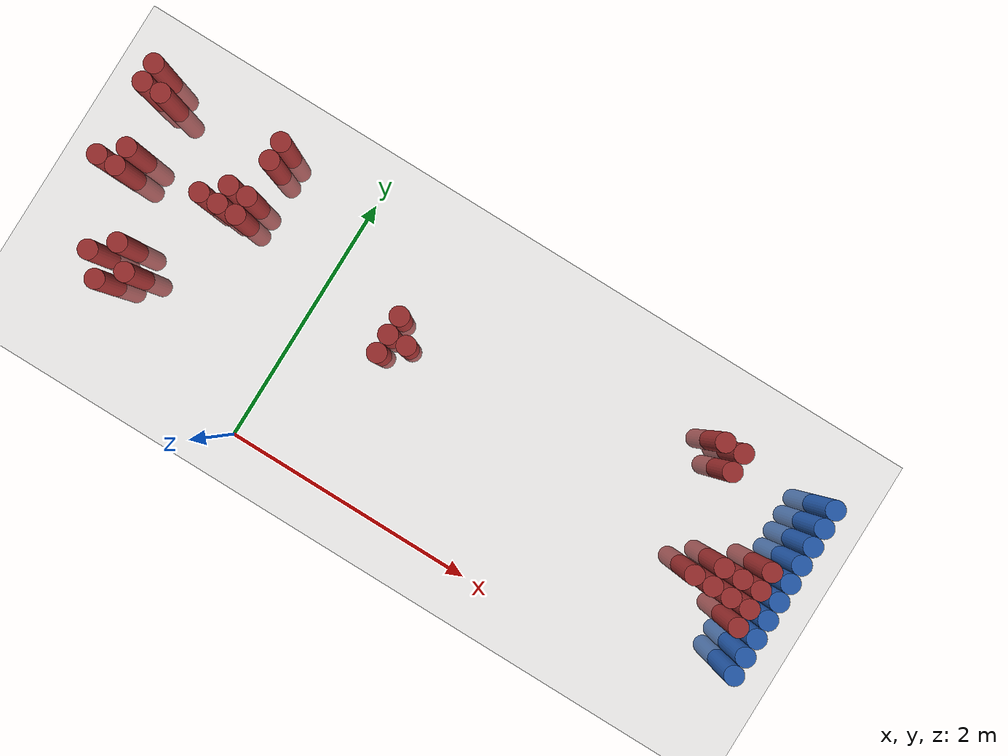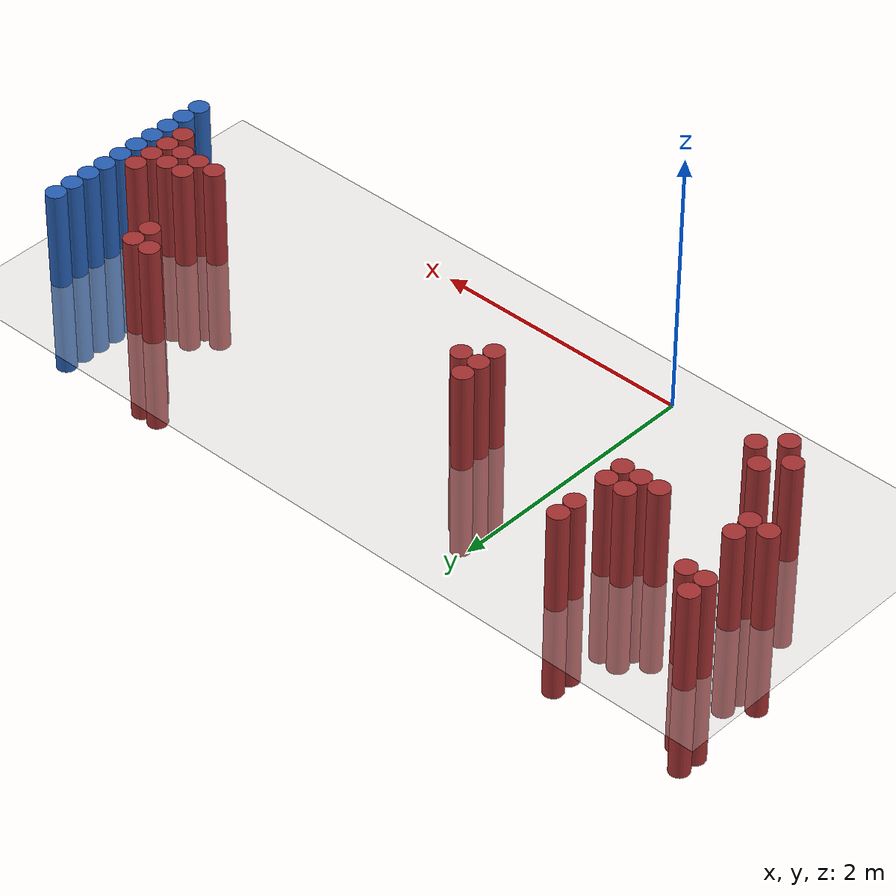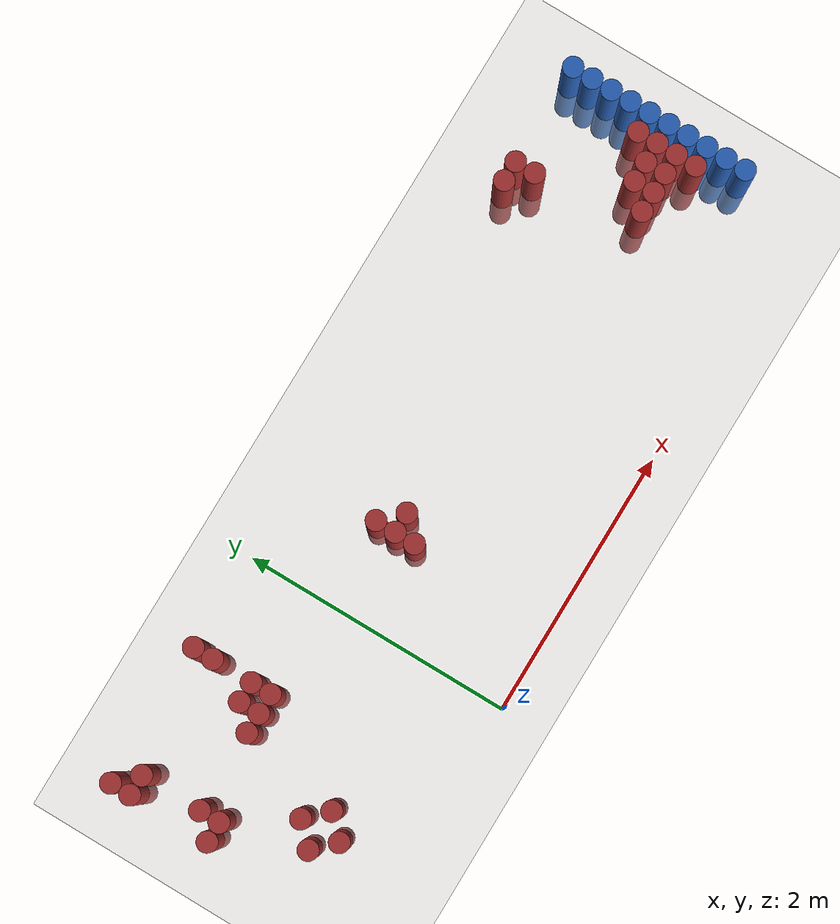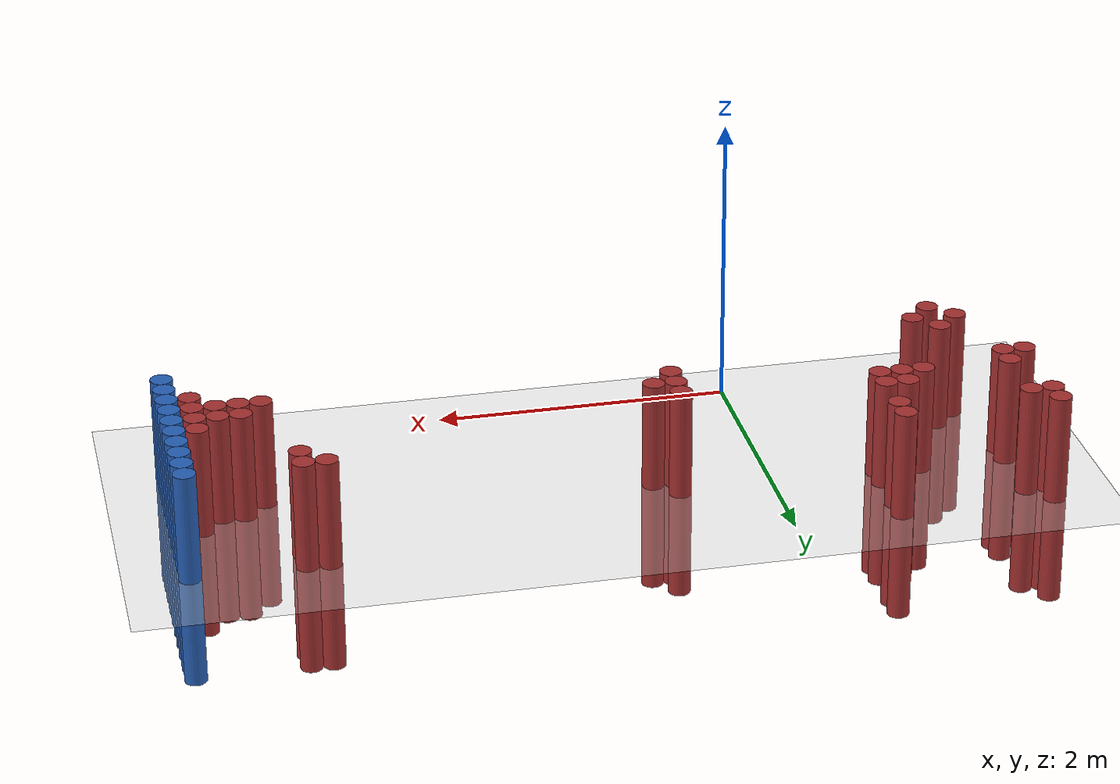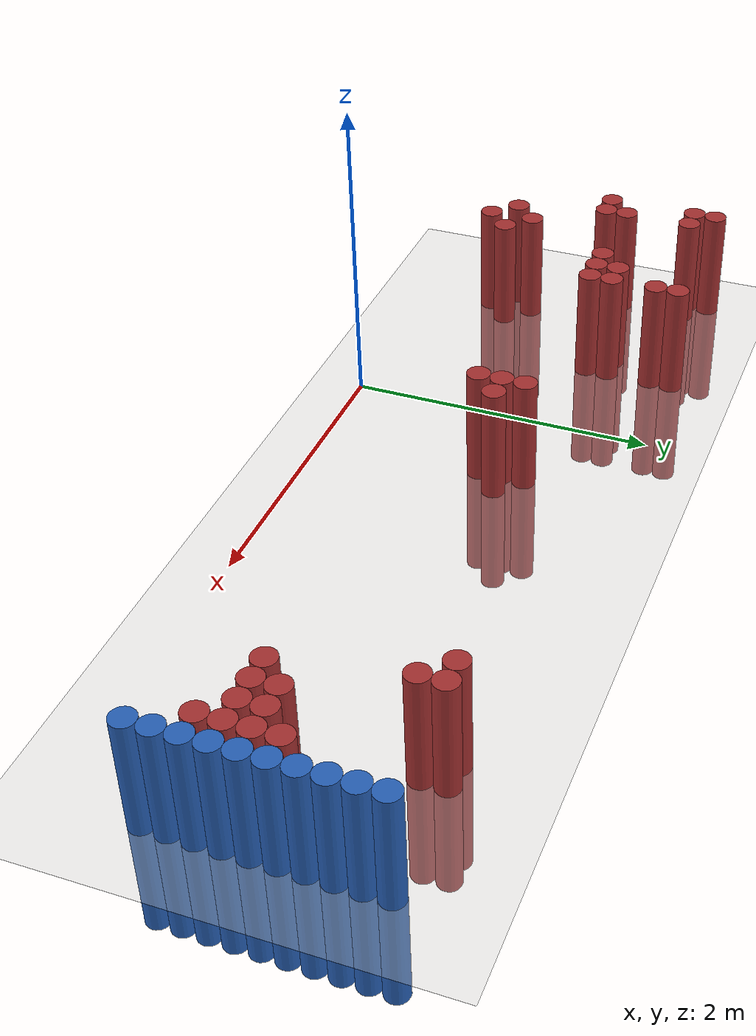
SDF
<sdf version="1.6">
 <world name="default">
  <model name="ground_plane">
   <static>1</static>
   <link name="link">
    <collision name="collision">
     <geometry><plane><normal>0 0 1</normal><size>100 100</size></plane></geometry>
     <surface><friction><ode><mu>100</mu><mu2>50</mu2></ode></friction></surface>
    </collision>
    <visual name="visual">
     <cast_shadows>0</cast_shadows>
     <geometry><plane><normal>0 0 1</normal><size>100 100</size></plane></geometry>
     <material>
      <script><uri>file://media/materials/scripts/gazebo.material</uri><name>Gazebo/Grey</name></script>
     </material>
    </visual>
   </link>
  </model>
  <model name="unit_cylinder_120">
   <static>1</static>
   <pose>3.925000 0.475000 0.000000 0.000000 0.000000 0.000000</pose>
   <link name="link">
    <inertial>
     <mass>1</mass>
     <inertia><ixx>0.145833</ixx><ixy>0</ixy><ixz>0</ixz><iyy>0.145833</iyy><iyz>0</iyz><izz>0.125</izz></inertia>
    </inertial>
    <collision name="collision">
     <geometry><cylinder><radius>0.075000</radius><length>1.5</length></cylinder></geometry>
    </collision>
    <visual name="visual">
     <geometry><cylinder><radius>0.075000</radius><length>1.5</length></cylinder></geometry>
     <material>
      <ambient>0.152000 0.379000 0.720000 1</ambient>
      <diffuse>0.152000 0.379000 0.720000 1</diffuse>
     </material>
     <material>
      <script><name>Gazebo/Grey</name><uri>file://media/materials/scripts/gazebo.material</uri></script>
     </material>
    </visual>
   </link>
  </model>
  <model name="unit_cylinder_122">
   <static>1</static>
   <pose>3.925000 0.625000 0.000000 0.000000 0.000000 0.000000</pose>
   <link name="link">
    <inertial>
     <mass>1</mass>
     <inertia><ixx>0.145833</ixx><ixy>0</ixy><ixz>0</ixz><iyy>0.145833</iyy><iyz>0</iyz><izz>0.125</izz></inertia>
    </inertial>
    <collision name="collision">
     <geometry><cylinder><radius>0.075000</radius><length>1.5</length></cylinder></geometry>
    </collision>
    <visual name="visual">
     <geometry><cylinder><radius>0.075000</radius><length>1.5</length></cylinder></geometry>
     <material>
      <ambient>0.152000 0.379000 0.720000 1</ambient>
      <diffuse>0.152000 0.379000 0.720000 1</diffuse>
     </material>
     <material>
      <script><name>Gazebo/Grey</name><uri>file://media/materials/scripts/gazebo.material</uri></script>
     </material>
    </visual>
   </link>
  </model>
  <model name="unit_cylinder_124">
   <static>1</static>
   <pose>3.925000 0.775000 0.000000 0.000000 0.000000 0.000000</pose>
   <link name="link">
    <inertial>
     <mass>1</mass>
     <inertia><ixx>0.145833</ixx><ixy>0</ixy><ixz>0</ixz><iyy>0.145833</iyy><iyz>0</iyz><izz>0.125</izz></inertia>
    </inertial>
    <collision name="collision">
     <geometry><cylinder><radius>0.075000</radius><length>1.5</length></cylinder></geometry>
    </collision>
    <visual name="visual">
     <geometry><cylinder><radius>0.075000</radius><length>1.5</length></cylinder></geometry>
     <material>
      <ambient>0.152000 0.379000 0.720000 1</ambient>
      <diffuse>0.152000 0.379000 0.720000 1</diffuse>
     </material>
     <material>
      <script><name>Gazebo/Grey</name><uri>file://media/materials/scripts/gazebo.material</uri></script>
     </material>
    </visual>
   </link>
  </model>
  <model name="unit_cylinder_126">
   <static>1</static>
   <pose>3.925000 0.925000 0.000000 0.000000 0.000000 0.000000</pose>
   <link name="link">
    <inertial>
     <mass>1</mass>
     <inertia><ixx>0.145833</ixx><ixy>0</ixy><ixz>0</ixz><iyy>0.145833</iyy><iyz>0</iyz><izz>0.125</izz></inertia>
    </inertial>
    <collision name="collision">
     <geometry><cylinder><radius>0.075000</radius><length>1.5</length></cylinder></geometry>
    </collision>
    <visual name="visual">
     <geometry><cylinder><radius>0.075000</radius><length>1.5</length></cylinder></geometry>
     <material>
      <ambient>0.152000 0.379000 0.720000 1</ambient>
      <diffuse>0.152000 0.379000 0.720000 1</diffuse>
     </material>
     <material>
      <script><name>Gazebo/Grey</name><uri>file://media/materials/scripts/gazebo.material</uri></script>
     </material>
    </visual>
   </link>
  </model>
  <model name="unit_cylinder_128">
   <static>1</static>
   <pose>3.925000 1.075000 0.000000 0.000000 0.000000 0.000000</pose>
   <link name="link">
    <inertial>
     <mass>1</mass>
     <inertia><ixx>0.145833</ixx><ixy>0</ixy><ixz>0</ixz><iyy>0.145833</iyy><iyz>0</iyz><izz>0.125</izz></inertia>
    </inertial>
    <collision name="collision">
     <geometry><cylinder><radius>0.075000</radius><length>1.5</length></cylinder></geometry>
    </collision>
    <visual name="visual">
     <geometry><cylinder><radius>0.075000</radius><length>1.5</length></cylinder></geometry>
     <material>
      <ambient>0.152000 0.379000 0.720000 1</ambient>
      <diffuse>0.152000 0.379000 0.720000 1</diffuse>
     </material>
     <material>
      <script><name>Gazebo/Grey</name><uri>file://media/materials/scripts/gazebo.material</uri></script>
     </material>
    </visual>
   </link>
  </model>
  <model name="unit_cylinder_130">
   <static>1</static>
   <pose>3.925000 1.225000 0.000000 0.000000 0.000000 0.000000</pose>
   <link name="link">
    <inertial>
     <mass>1</mass>
     <inertia><ixx>0.145833</ixx><ixy>0</ixy><ixz>0</ixz><iyy>0.145833</iyy><iyz>0</iyz><izz>0.125</izz></inertia>
    </inertial>
    <collision name="collision">
     <geometry><cylinder><radius>0.075000</radius><length>1.5</length></cylinder></geometry>
    </collision>
    <visual name="visual">
     <geometry><cylinder><radius>0.075000</radius><length>1.5</length></cylinder></geometry>
     <material>
      <ambient>0.152000 0.379000 0.720000 1</ambient>
      <diffuse>0.152000 0.379000 0.720000 1</diffuse>
     </material>
     <material>
      <script><name>Gazebo/Grey</name><uri>file://media/materials/scripts/gazebo.material</uri></script>
     </material>
    </visual>
   </link>
  </model>
  <model name="unit_cylinder_132">
   <static>1</static>
   <pose>3.925000 1.375000 0.000000 0.000000 0.000000 0.000000</pose>
   <link name="link">
    <inertial>
     <mass>1</mass>
     <inertia><ixx>0.145833</ixx><ixy>0</ixy><ixz>0</ixz><iyy>0.145833</iyy><iyz>0</iyz><izz>0.125</izz></inertia>
    </inertial>
    <collision name="collision">
     <geometry><cylinder><radius>0.075000</radius><length>1.5</length></cylinder></geometry>
    </collision>
    <visual name="visual">
     <geometry><cylinder><radius>0.075000</radius><length>1.5</length></cylinder></geometry>
     <material>
      <ambient>0.152000 0.379000 0.720000 1</ambient>
      <diffuse>0.152000 0.379000 0.720000 1</diffuse>
     </material>
     <material>
      <script><name>Gazebo/Grey</name><uri>file://media/materials/scripts/gazebo.material</uri></script>
     </material>
    </visual>
   </link>
  </model>
  <model name="unit_cylinder_134">
   <static>1</static>
   <pose>3.925000 1.525000 0.000000 0.000000 0.000000 0.000000</pose>
   <link name="link">
    <inertial>
     <mass>1</mass>
     <inertia><ixx>0.145833</ixx><ixy>0</ixy><ixz>0</ixz><iyy>0.145833</iyy><iyz>0</iyz><izz>0.125</izz></inertia>
    </inertial>
    <collision name="collision">
     <geometry><cylinder><radius>0.075000</radius><length>1.5</length></cylinder></geometry>
    </collision>
    <visual name="visual">
     <geometry><cylinder><radius>0.075000</radius><length>1.5</length></cylinder></geometry>
     <material>
      <ambient>0.152000 0.379000 0.720000 1</ambient>
      <diffuse>0.152000 0.379000 0.720000 1</diffuse>
     </material>
     <material>
      <script><name>Gazebo/Grey</name><uri>file://media/materials/scripts/gazebo.material</uri></script>
     </material>
    </visual>
   </link>
  </model>
  <model name="unit_cylinder_136">
   <static>1</static>
   <pose>3.925000 1.675000 0.000000 0.000000 0.000000 0.000000</pose>
   <link name="link">
    <inertial>
     <mass>1</mass>
     <inertia><ixx>0.145833</ixx><ixy>0</ixy><ixz>0</ixz><iyy>0.145833</iyy><iyz>0</iyz><izz>0.125</izz></inertia>
    </inertial>
    <collision name="collision">
     <geometry><cylinder><radius>0.075000</radius><length>1.5</length></cylinder></geometry>
    </collision>
    <visual name="visual">
     <geometry><cylinder><radius>0.075000</radius><length>1.5</length></cylinder></geometry>
     <material>
      <ambient>0.152000 0.379000 0.720000 1</ambient>
      <diffuse>0.152000 0.379000 0.720000 1</diffuse>
     </material>
     <material>
      <script><name>Gazebo/Grey</name><uri>file://media/materials/scripts/gazebo.material</uri></script>
     </material>
    </visual>
   </link>
  </model>
  <model name="unit_cylinder_138">
   <static>1</static>
   <pose>3.925000 1.825000 0.000000 0.000000 0.000000 0.000000</pose>
   <link name="link">
    <inertial>
     <mass>1</mass>
     <inertia><ixx>0.145833</ixx><ixy>0</ixy><ixz>0</ixz><iyy>0.145833</iyy><iyz>0</iyz><izz>0.125</izz></inertia>
    </inertial>
    <collision name="collision">
     <geometry><cylinder><radius>0.075000</radius><length>1.5</length></cylinder></geometry>
    </collision>
    <visual name="visual">
     <geometry><cylinder><radius>0.075000</radius><length>1.5</length></cylinder></geometry>
     <material>
      <ambient>0.152000 0.379000 0.720000 1</ambient>
      <diffuse>0.152000 0.379000 0.720000 1</diffuse>
     </material>
     <material>
      <script><name>Gazebo/Grey</name><uri>file://media/materials/scripts/gazebo.material</uri></script>
     </material>
    </visual>
   </link>
  </model>
  <model name="unit_cylinder_306">
   <static>1</static>
   <pose>-1.775000 1.225000 0.000000 0.000000 0.000000 0.000000</pose>
   <link name="link">
    <inertial>
     <mass>1</mass>
     <inertia><ixx>0.145833</ixx><ixy>0</ixy><ixz>0</ixz><iyy>0.145833</iyy><iyz>0</iyz><izz>0.125</izz></inertia>
    </inertial>
    <collision name="collision">
     <geometry><cylinder><radius>0.075000</radius><length>1.5</length></cylinder></geometry>
    </collision>
    <visual name="visual">
     <geometry><cylinder><radius>0.075000</radius><length>1.5</length></cylinder></geometry>
     <material>
      <ambient>0.648000 0.192000 0.192000 1</ambient>
      <diffuse>0.648000 0.192000 0.192000 1</diffuse>
     </material>
     <material>
      <script><name>Gazebo/Grey</name><uri>file://media/materials/scripts/gazebo.material</uri></script>
     </material>
    </visual>
   </link>
  </model>
  <model name="unit_cylinder_307">
   <static>1</static>
   <pose>-1.775000 1.825000 0.000000 0.000000 0.000000 0.000000</pose>
   <link name="link">
    <inertial>
     <mass>1</mass>
     <inertia><ixx>0.145833</ixx><ixy>0</ixy><ixz>0</ixz><iyy>0.145833</iyy><iyz>0</iyz><izz>0.125</izz></inertia>
    </inertial>
    <collision name="collision">
     <geometry><cylinder><radius>0.075000</radius><length>1.5</length></cylinder></geometry>
    </collision>
    <visual name="visual">
     <geometry><cylinder><radius>0.075000</radius><length>1.5</length></cylinder></geometry>
     <material>
      <ambient>0.648000 0.192000 0.192000 1</ambient>
      <diffuse>0.648000 0.192000 0.192000 1</diffuse>
     </material>
     <material>
      <script><name>Gazebo/Grey</name><uri>file://media/materials/scripts/gazebo.material</uri></script>
     </material>
    </visual>
   </link>
  </model>
  <model name="unit_cylinder_308">
   <static>1</static>
   <pose>-1.775000 1.975000 0.000000 0.000000 0.000000 0.000000</pose>
   <link name="link">
    <inertial>
     <mass>1</mass>
     <inertia><ixx>0.145833</ixx><ixy>0</ixy><ixz>0</ixz><iyy>0.145833</iyy><iyz>0</iyz><izz>0.125</izz></inertia>
    </inertial>
    <collision name="collision">
     <geometry><cylinder><radius>0.075000</radius><length>1.5</length></cylinder></geometry>
    </collision>
    <visual name="visual">
     <geometry><cylinder><radius>0.075000</radius><length>1.5</length></cylinder></geometry>
     <material>
      <ambient>0.648000 0.192000 0.192000 1</ambient>
      <diffuse>0.648000 0.192000 0.192000 1</diffuse>
     </material>
     <material>
      <script><name>Gazebo/Grey</name><uri>file://media/materials/scripts/gazebo.material</uri></script>
     </material>
    </visual>
   </link>
  </model>
  <model name="unit_cylinder_309">
   <static>1</static>
   <pose>-1.625000 1.225000 0.000000 0.000000 0.000000 0.000000</pose>
   <link name="link">
    <inertial>
     <mass>1</mass>
     <inertia><ixx>0.145833</ixx><ixy>0</ixy><ixz>0</ixz><iyy>0.145833</iyy><iyz>0</iyz><izz>0.125</izz></inertia>
    </inertial>
    <collision name="collision">
     <geometry><cylinder><radius>0.075000</radius><length>1.5</length></cylinder></geometry>
    </collision>
    <visual name="visual">
     <geometry><cylinder><radius>0.075000</radius><length>1.5</length></cylinder></geometry>
     <material>
      <ambient>0.648000 0.192000 0.192000 1</ambient>
      <diffuse>0.648000 0.192000 0.192000 1</diffuse>
     </material>
     <material>
      <script><name>Gazebo/Grey</name><uri>file://media/materials/scripts/gazebo.material</uri></script>
     </material>
    </visual>
   </link>
  </model>
  <model name="unit_cylinder_310">
   <static>1</static>
   <pose>-1.625000 1.375000 0.000000 0.000000 0.000000 0.000000</pose>
   <link name="link">
    <inertial>
     <mass>1</mass>
     <inertia><ixx>0.145833</ixx><ixy>0</ixy><ixz>0</ixz><iyy>0.145833</iyy><iyz>0</iyz><izz>0.125</izz></inertia>
    </inertial>
    <collision name="collision">
     <geometry><cylinder><radius>0.075000</radius><length>1.5</length></cylinder></geometry>
    </collision>
    <visual name="visual">
     <geometry><cylinder><radius>0.075000</radius><length>1.5</length></cylinder></geometry>
     <material>
      <ambient>0.648000 0.192000 0.192000 1</ambient>
      <diffuse>0.648000 0.192000 0.192000 1</diffuse>
     </material>
     <material>
      <script><name>Gazebo/Grey</name><uri>file://media/materials/scripts/gazebo.material</uri></script>
     </material>
    </visual>
   </link>
  </model>
  <model name="unit_cylinder_311">
   <static>1</static>
   <pose>-1.625000 1.825000 0.000000 0.000000 0.000000 0.000000</pose>
   <link name="link">
    <inertial>
     <mass>1</mass>
     <inertia><ixx>0.145833</ixx><ixy>0</ixy><ixz>0</ixz><iyy>0.145833</iyy><iyz>0</iyz><izz>0.125</izz></inertia>
    </inertial>
    <collision name="collision">
     <geometry><cylinder><radius>0.075000</radius><length>1.5</length></cylinder></geometry>
    </collision>
    <visual name="visual">
     <geometry><cylinder><radius>0.075000</radius><length>1.5</length></cylinder></geometry>
     <material>
      <ambient>0.648000 0.192000 0.192000 1</ambient>
      <diffuse>0.648000 0.192000 0.192000 1</diffuse>
     </material>
     <material>
      <script><name>Gazebo/Grey</name><uri>file://media/materials/scripts/gazebo.material</uri></script>
     </material>
    </visual>
   </link>
  </model>
  <model name="unit_cylinder_312">
   <static>1</static>
   <pose>-1.475000 0.625000 0.000000 0.000000 0.000000 0.000000</pose>
   <link name="link">
    <inertial>
     <mass>1</mass>
     <inertia><ixx>0.145833</ixx><ixy>0</ixy><ixz>0</ixz><iyy>0.145833</iyy><iyz>0</iyz><izz>0.125</izz></inertia>
    </inertial>
    <collision name="collision">
     <geometry><cylinder><radius>0.075000</radius><length>1.5</length></cylinder></geometry>
    </collision>
    <visual name="visual">
     <geometry><cylinder><radius>0.075000</radius><length>1.5</length></cylinder></geometry>
     <material>
      <ambient>0.648000 0.192000 0.192000 1</ambient>
      <diffuse>0.648000 0.192000 0.192000 1</diffuse>
     </material>
     <material>
      <script><name>Gazebo/Grey</name><uri>file://media/materials/scripts/gazebo.material</uri></script>
     </material>
    </visual>
   </link>
  </model>
  <model name="unit_cylinder_319">
   <static>1</static>
   <pose>-1.325000 0.475000 0.000000 0.000000 0.000000 0.000000</pose>
   <link name="link">
    <inertial>
     <mass>1</mass>
     <inertia><ixx>0.145833</ixx><ixy>0</ixy><ixz>0</ixz><iyy>0.145833</iyy><iyz>0</iyz><izz>0.125</izz></inertia>
    </inertial>
    <collision name="collision">
     <geometry><cylinder><radius>0.075000</radius><length>1.5</length></cylinder></geometry>
    </collision>
    <visual name="visual">
     <geometry><cylinder><radius>0.075000</radius><length>1.5</length></cylinder></geometry>
     <material>
      <ambient>0.648000 0.192000 0.192000 1</ambient>
      <diffuse>0.648000 0.192000 0.192000 1</diffuse>
     </material>
     <material>
      <script><name>Gazebo/Grey</name><uri>file://media/materials/scripts/gazebo.material</uri></script>
     </material>
    </visual>
   </link>
  </model>
  <model name="unit_cylinder_320">
   <static>1</static>
   <pose>-1.325000 0.775000 0.000000 0.000000 0.000000 0.000000</pose>
   <link name="link">
    <inertial>
     <mass>1</mass>
     <inertia><ixx>0.145833</ixx><ixy>0</ixy><ixz>0</ixz><iyy>0.145833</iyy><iyz>0</iyz><izz>0.125</izz></inertia>
    </inertial>
    <collision name="collision">
     <geometry><cylinder><radius>0.075000</radius><length>1.5</length></cylinder></geometry>
    </collision>
    <visual name="visual">
     <geometry><cylinder><radius>0.075000</radius><length>1.5</length></cylinder></geometry>
     <material>
      <ambient>0.648000 0.192000 0.192000 1</ambient>
      <diffuse>0.648000 0.192000 0.192000 1</diffuse>
     </material>
     <material>
      <script><name>Gazebo/Grey</name><uri>file://media/materials/scripts/gazebo.material</uri></script>
     </material>
    </visual>
   </link>
  </model>
  <model name="unit_cylinder_329">
   <static>1</static>
   <pose>-1.175000 0.625000 0.000000 0.000000 0.000000 0.000000</pose>
   <link name="link">
    <inertial>
     <mass>1</mass>
     <inertia><ixx>0.145833</ixx><ixy>0</ixy><ixz>0</ixz><iyy>0.145833</iyy><iyz>0</iyz><izz>0.125</izz></inertia>
    </inertial>
    <collision name="collision">
     <geometry><cylinder><radius>0.075000</radius><length>1.5</length></cylinder></geometry>
    </collision>
    <visual name="visual">
     <geometry><cylinder><radius>0.075000</radius><length>1.5</length></cylinder></geometry>
     <material>
      <ambient>0.648000 0.192000 0.192000 1</ambient>
      <diffuse>0.648000 0.192000 0.192000 1</diffuse>
     </material>
     <material>
      <script><name>Gazebo/Grey</name><uri>file://media/materials/scripts/gazebo.material</uri></script>
     </material>
    </visual>
   </link>
  </model>
  <model name="unit_cylinder_333">
   <static>1</static>
   <pose>-1.025000 1.375000 0.000000 0.000000 0.000000 0.000000</pose>
   <link name="link">
    <inertial>
     <mass>1</mass>
     <inertia><ixx>0.145833</ixx><ixy>0</ixy><ixz>0</ixz><iyy>0.145833</iyy><iyz>0</iyz><izz>0.125</izz></inertia>
    </inertial>
    <collision name="collision">
     <geometry><cylinder><radius>0.075000</radius><length>1.5</length></cylinder></geometry>
    </collision>
    <visual name="visual">
     <geometry><cylinder><radius>0.075000</radius><length>1.5</length></cylinder></geometry>
     <material>
      <ambient>0.648000 0.192000 0.192000 1</ambient>
      <diffuse>0.648000 0.192000 0.192000 1</diffuse>
     </material>
     <material>
      <script><name>Gazebo/Grey</name><uri>file://media/materials/scripts/gazebo.material</uri></script>
     </material>
    </visual>
   </link>
  </model>
  <model name="unit_cylinder_338">
   <static>1</static>
   <pose>-0.875000 1.375000 0.000000 0.000000 0.000000 0.000000</pose>
   <link name="link">
    <inertial>
     <mass>1</mass>
     <inertia><ixx>0.145833</ixx><ixy>0</ixy><ixz>0</ixz><iyy>0.145833</iyy><iyz>0</iyz><izz>0.125</izz></inertia>
    </inertial>
    <collision name="collision">
     <geometry><cylinder><radius>0.075000</radius><length>1.5</length></cylinder></geometry>
    </collision>
    <visual name="visual">
     <geometry><cylinder><radius>0.075000</radius><length>1.5</length></cylinder></geometry>
     <material>
      <ambient>0.648000 0.192000 0.192000 1</ambient>
      <diffuse>0.648000 0.192000 0.192000 1</diffuse>
     </material>
     <material>
      <script><name>Gazebo/Grey</name><uri>file://media/materials/scripts/gazebo.material</uri></script>
     </material>
    </visual>
   </link>
  </model>
  <model name="unit_cylinder_339">
   <static>1</static>
   <pose>-0.875000 1.525000 0.000000 0.000000 0.000000 0.000000</pose>
   <link name="link">
    <inertial>
     <mass>1</mass>
     <inertia><ixx>0.145833</ixx><ixy>0</ixy><ixz>0</ixz><iyy>0.145833</iyy><iyz>0</iyz><izz>0.125</izz></inertia>
    </inertial>
    <collision name="collision">
     <geometry><cylinder><radius>0.075000</radius><length>1.5</length></cylinder></geometry>
    </collision>
    <visual name="visual">
     <geometry><cylinder><radius>0.075000</radius><length>1.5</length></cylinder></geometry>
     <material>
      <ambient>0.648000 0.192000 0.192000 1</ambient>
      <diffuse>0.648000 0.192000 0.192000 1</diffuse>
     </material>
     <material>
      <script><name>Gazebo/Grey</name><uri>file://media/materials/scripts/gazebo.material</uri></script>
     </material>
    </visual>
   </link>
  </model>
  <model name="unit_cylinder_343">
   <static>1</static>
   <pose>-0.725000 1.375000 0.000000 0.000000 0.000000 0.000000</pose>
   <link name="link">
    <inertial>
     <mass>1</mass>
     <inertia><ixx>0.145833</ixx><ixy>0</ixy><ixz>0</ixz><iyy>0.145833</iyy><iyz>0</iyz><izz>0.125</izz></inertia>
    </inertial>
    <collision name="collision">
     <geometry><cylinder><radius>0.075000</radius><length>1.5</length></cylinder></geometry>
    </collision>
    <visual name="visual">
     <geometry><cylinder><radius>0.075000</radius><length>1.5</length></cylinder></geometry>
     <material>
      <ambient>0.648000 0.192000 0.192000 1</ambient>
      <diffuse>0.648000 0.192000 0.192000 1</diffuse>
     </material>
     <material>
      <script><name>Gazebo/Grey</name><uri>file://media/materials/scripts/gazebo.material</uri></script>
     </material>
    </visual>
   </link>
  </model>
  <model name="unit_cylinder_344">
   <static>1</static>
   <pose>-0.725000 1.525000 0.000000 0.000000 0.000000 0.000000</pose>
   <link name="link">
    <inertial>
     <mass>1</mass>
     <inertia><ixx>0.145833</ixx><ixy>0</ixy><ixz>0</ixz><iyy>0.145833</iyy><iyz>0</iyz><izz>0.125</izz></inertia>
    </inertial>
    <collision name="collision">
     <geometry><cylinder><radius>0.075000</radius><length>1.5</length></cylinder></geometry>
    </collision>
    <visual name="visual">
     <geometry><cylinder><radius>0.075000</radius><length>1.5</length></cylinder></geometry>
     <material>
      <ambient>0.648000 0.192000 0.192000 1</ambient>
      <diffuse>0.648000 0.192000 0.192000 1</diffuse>
     </material>
     <material>
      <script><name>Gazebo/Grey</name><uri>file://media/materials/scripts/gazebo.material</uri></script>
     </material>
    </visual>
   </link>
  </model>
  <model name="unit_cylinder_345">
   <static>1</static>
   <pose>-0.725000 1.825000 0.000000 0.000000 0.000000 0.000000</pose>
   <link name="link">
    <inertial>
     <mass>1</mass>
     <inertia><ixx>0.145833</ixx><ixy>0</ixy><ixz>0</ixz><iyy>0.145833</iyy><iyz>0</iyz><izz>0.125</izz></inertia>
    </inertial>
    <collision name="collision">
     <geometry><cylinder><radius>0.075000</radius><length>1.5</length></cylinder></geometry>
    </collision>
    <visual name="visual">
     <geometry><cylinder><radius>0.075000</radius><length>1.5</length></cylinder></geometry>
     <material>
      <ambient>0.648000 0.192000 0.192000 1</ambient>
      <diffuse>0.648000 0.192000 0.192000 1</diffuse>
     </material>
     <material>
      <script><name>Gazebo/Grey</name><uri>file://media/materials/scripts/gazebo.material</uri></script>
     </material>
    </visual>
   </link>
  </model>
  <model name="unit_cylinder_346">
   <static>1</static>
   <pose>-0.725000 1.975000 0.000000 0.000000 0.000000 0.000000</pose>
   <link name="link">
    <inertial>
     <mass>1</mass>
     <inertia><ixx>0.145833</ixx><ixy>0</ixy><ixz>0</ixz><iyy>0.145833</iyy><iyz>0</iyz><izz>0.125</izz></inertia>
    </inertial>
    <collision name="collision">
     <geometry><cylinder><radius>0.075000</radius><length>1.5</length></cylinder></geometry>
    </collision>
    <visual name="visual">
     <geometry><cylinder><radius>0.075000</radius><length>1.5</length></cylinder></geometry>
     <material>
      <ambient>0.648000 0.192000 0.192000 1</ambient>
      <diffuse>0.648000 0.192000 0.192000 1</diffuse>
     </material>
     <material>
      <script><name>Gazebo/Grey</name><uri>file://media/materials/scripts/gazebo.material</uri></script>
     </material>
    </visual>
   </link>
  </model>
  <model name="unit_cylinder_371">
   <static>1</static>
   <pose>0.625000 1.075000 0.000000 0.000000 0.000000 0.000000</pose>
   <link name="link">
    <inertial>
     <mass>1</mass>
     <inertia><ixx>0.145833</ixx><ixy>0</ixy><ixz>0</ixz><iyy>0.145833</iyy><iyz>0</iyz><izz>0.125</izz></inertia>
    </inertial>
    <collision name="collision">
     <geometry><cylinder><radius>0.075000</radius><length>1.5</length></cylinder></geometry>
    </collision>
    <visual name="visual">
     <geometry><cylinder><radius>0.075000</radius><length>1.5</length></cylinder></geometry>
     <material>
      <ambient>0.648000 0.192000 0.192000 1</ambient>
      <diffuse>0.648000 0.192000 0.192000 1</diffuse>
     </material>
     <material>
      <script><name>Gazebo/Grey</name><uri>file://media/materials/scripts/gazebo.material</uri></script>
     </material>
    </visual>
   </link>
  </model>
  <model name="unit_cylinder_372">
   <static>1</static>
   <pose>0.625000 1.225000 0.000000 0.000000 0.000000 0.000000</pose>
   <link name="link">
    <inertial>
     <mass>1</mass>
     <inertia><ixx>0.145833</ixx><ixy>0</ixy><ixz>0</ixz><iyy>0.145833</iyy><iyz>0</iyz><izz>0.125</izz></inertia>
    </inertial>
    <collision name="collision">
     <geometry><cylinder><radius>0.075000</radius><length>1.5</length></cylinder></geometry>
    </collision>
    <visual name="visual">
     <geometry><cylinder><radius>0.075000</radius><length>1.5</length></cylinder></geometry>
     <material>
      <ambient>0.648000 0.192000 0.192000 1</ambient>
      <diffuse>0.648000 0.192000 0.192000 1</diffuse>
     </material>
     <material>
      <script><name>Gazebo/Grey</name><uri>file://media/materials/scripts/gazebo.material</uri></script>
     </material>
    </visual>
   </link>
  </model>
  <model name="unit_cylinder_373">
   <static>1</static>
   <pose>0.625000 1.375000 0.000000 0.000000 0.000000 0.000000</pose>
   <link name="link">
    <inertial>
     <mass>1</mass>
     <inertia><ixx>0.145833</ixx><ixy>0</ixy><ixz>0</ixz><iyy>0.145833</iyy><iyz>0</iyz><izz>0.125</izz></inertia>
    </inertial>
    <collision name="collision">
     <geometry><cylinder><radius>0.075000</radius><length>1.5</length></cylinder></geometry>
    </collision>
    <visual name="visual">
     <geometry><cylinder><radius>0.075000</radius><length>1.5</length></cylinder></geometry>
     <material>
      <ambient>0.648000 0.192000 0.192000 1</ambient>
      <diffuse>0.648000 0.192000 0.192000 1</diffuse>
     </material>
     <material>
      <script><name>Gazebo/Grey</name><uri>file://media/materials/scripts/gazebo.material</uri></script>
     </material>
    </visual>
   </link>
  </model>
  <model name="unit_cylinder_380">
   <static>1</static>
   <pose>0.775000 1.225000 0.000000 0.000000 0.000000 0.000000</pose>
   <link name="link">
    <inertial>
     <mass>1</mass>
     <inertia><ixx>0.145833</ixx><ixy>0</ixy><ixz>0</ixz><iyy>0.145833</iyy><iyz>0</iyz><izz>0.125</izz></inertia>
    </inertial>
    <collision name="collision">
     <geometry><cylinder><radius>0.075000</radius><length>1.5</length></cylinder></geometry>
    </collision>
    <visual name="visual">
     <geometry><cylinder><radius>0.075000</radius><length>1.5</length></cylinder></geometry>
     <material>
      <ambient>0.648000 0.192000 0.192000 1</ambient>
      <diffuse>0.648000 0.192000 0.192000 1</diffuse>
     </material>
     <material>
      <script><name>Gazebo/Grey</name><uri>file://media/materials/scripts/gazebo.material</uri></script>
     </material>
    </visual>
   </link>
  </model>
  <model name="unit_cylinder_398">
   <static>1</static>
   <pose>3.025000 1.825000 0.000000 0.000000 0.000000 0.000000</pose>
   <link name="link">
    <inertial>
     <mass>1</mass>
     <inertia><ixx>0.145833</ixx><ixy>0</ixy><ixz>0</ixz><iyy>0.145833</iyy><iyz>0</iyz><izz>0.125</izz></inertia>
    </inertial>
    <collision name="collision">
     <geometry><cylinder><radius>0.075000</radius><length>1.5</length></cylinder></geometry>
    </collision>
    <visual name="visual">
     <geometry><cylinder><radius>0.075000</radius><length>1.5</length></cylinder></geometry>
     <material>
      <ambient>0.648000 0.192000 0.192000 1</ambient>
      <diffuse>0.648000 0.192000 0.192000 1</diffuse>
     </material>
     <material>
      <script><name>Gazebo/Grey</name><uri>file://media/materials/scripts/gazebo.material</uri></script>
     </material>
    </visual>
   </link>
  </model>
  <model name="unit_cylinder_400">
   <static>1</static>
   <pose>3.175000 1.675000 0.000000 0.000000 0.000000 0.000000</pose>
   <link name="link">
    <inertial>
     <mass>1</mass>
     <inertia><ixx>0.145833</ixx><ixy>0</ixy><ixz>0</ixz><iyy>0.145833</iyy><iyz>0</iyz><izz>0.125</izz></inertia>
    </inertial>
    <collision name="collision">
     <geometry><cylinder><radius>0.075000</radius><length>1.5</length></cylinder></geometry>
    </collision>
    <visual name="visual">
     <geometry><cylinder><radius>0.075000</radius><length>1.5</length></cylinder></geometry>
     <material>
      <ambient>0.648000 0.192000 0.192000 1</ambient>
      <diffuse>0.648000 0.192000 0.192000 1</diffuse>
     </material>
     <material>
      <script><name>Gazebo/Grey</name><uri>file://media/materials/scripts/gazebo.material</uri></script>
     </material>
    </visual>
   </link>
  </model>
  <model name="unit_cylinder_401">
   <static>1</static>
   <pose>3.175000 1.825000 0.000000 0.000000 0.000000 0.000000</pose>
   <link name="link">
    <inertial>
     <mass>1</mass>
     <inertia><ixx>0.145833</ixx><ixy>0</ixy><ixz>0</ixz><iyy>0.145833</iyy><iyz>0</iyz><izz>0.125</izz></inertia>
    </inertial>
    <collision name="collision">
     <geometry><cylinder><radius>0.075000</radius><length>1.5</length></cylinder></geometry>
    </collision>
    <visual name="visual">
     <geometry><cylinder><radius>0.075000</radius><length>1.5</length></cylinder></geometry>
     <material>
      <ambient>0.648000 0.192000 0.192000 1</ambient>
      <diffuse>0.648000 0.192000 0.192000 1</diffuse>
     </material>
     <material>
      <script><name>Gazebo/Grey</name><uri>file://media/materials/scripts/gazebo.material</uri></script>
     </material>
    </visual>
   </link>
  </model>
  <model name="unit_cylinder_403">
   <static>1</static>
   <pose>3.325000 0.925000 0.000000 0.000000 0.000000 0.000000</pose>
   <link name="link">
    <inertial>
     <mass>1</mass>
     <inertia><ixx>0.145833</ixx><ixy>0</ixy><ixz>0</ixz><iyy>0.145833</iyy><iyz>0</iyz><izz>0.125</izz></inertia>
    </inertial>
    <collision name="collision">
     <geometry><cylinder><radius>0.075000</radius><length>1.5</length></cylinder></geometry>
    </collision>
    <visual name="visual">
     <geometry><cylinder><radius>0.075000</radius><length>1.5</length></cylinder></geometry>
     <material>
      <ambient>0.648000 0.192000 0.192000 1</ambient>
      <diffuse>0.648000 0.192000 0.192000 1</diffuse>
     </material>
     <material>
      <script><name>Gazebo/Grey</name><uri>file://media/materials/scripts/gazebo.material</uri></script>
     </material>
    </visual>
   </link>
  </model>
  <model name="unit_cylinder_406">
   <static>1</static>
   <pose>3.475000 0.925000 0.000000 0.000000 0.000000 0.000000</pose>
   <link name="link">
    <inertial>
     <mass>1</mass>
     <inertia><ixx>0.145833</ixx><ixy>0</ixy><ixz>0</ixz><iyy>0.145833</iyy><iyz>0</iyz><izz>0.125</izz></inertia>
    </inertial>
    <collision name="collision">
     <geometry><cylinder><radius>0.075000</radius><length>1.5</length></cylinder></geometry>
    </collision>
    <visual name="visual">
     <geometry><cylinder><radius>0.075000</radius><length>1.5</length></cylinder></geometry>
     <material>
      <ambient>0.648000 0.192000 0.192000 1</ambient>
      <diffuse>0.648000 0.192000 0.192000 1</diffuse>
     </material>
     <material>
      <script><name>Gazebo/Grey</name><uri>file://media/materials/scripts/gazebo.material</uri></script>
     </material>
    </visual>
   </link>
  </model>
  <model name="unit_cylinder_407">
   <static>1</static>
   <pose>3.475000 1.075000 0.000000 0.000000 0.000000 0.000000</pose>
   <link name="link">
    <inertial>
     <mass>1</mass>
     <inertia><ixx>0.145833</ixx><ixy>0</ixy><ixz>0</ixz><iyy>0.145833</iyy><iyz>0</iyz><izz>0.125</izz></inertia>
    </inertial>
    <collision name="collision">
     <geometry><cylinder><radius>0.075000</radius><length>1.5</length></cylinder></geometry>
    </collision>
    <visual name="visual">
     <geometry><cylinder><radius>0.075000</radius><length>1.5</length></cylinder></geometry>
     <material>
      <ambient>0.648000 0.192000 0.192000 1</ambient>
      <diffuse>0.648000 0.192000 0.192000 1</diffuse>
     </material>
     <material>
      <script><name>Gazebo/Grey</name><uri>file://media/materials/scripts/gazebo.material</uri></script>
     </material>
    </visual>
   </link>
  </model>
  <model name="unit_cylinder_408">
   <static>1</static>
   <pose>3.625000 0.925000 0.000000 0.000000 0.000000 0.000000</pose>
   <link name="link">
    <inertial>
     <mass>1</mass>
     <inertia><ixx>0.145833</ixx><ixy>0</ixy><ixz>0</ixz><iyy>0.145833</iyy><iyz>0</iyz><izz>0.125</izz></inertia>
    </inertial>
    <collision name="collision">
     <geometry><cylinder><radius>0.075000</radius><length>1.5</length></cylinder></geometry>
    </collision>
    <visual name="visual">
     <geometry><cylinder><radius>0.075000</radius><length>1.5</length></cylinder></geometry>
     <material>
      <ambient>0.648000 0.192000 0.192000 1</ambient>
      <diffuse>0.648000 0.192000 0.192000 1</diffuse>
     </material>
     <material>
      <script><name>Gazebo/Grey</name><uri>file://media/materials/scripts/gazebo.material</uri></script>
     </material>
    </visual>
   </link>
  </model>
  <model name="unit_cylinder_409">
   <static>1</static>
   <pose>3.625000 1.075000 0.000000 0.000000 0.000000 0.000000</pose>
   <link name="link">
    <inertial>
     <mass>1</mass>
     <inertia><ixx>0.145833</ixx><ixy>0</ixy><ixz>0</ixz><iyy>0.145833</iyy><iyz>0</iyz><izz>0.125</izz></inertia>
    </inertial>
    <collision name="collision">
     <geometry><cylinder><radius>0.075000</radius><length>1.5</length></cylinder></geometry>
    </collision>
    <visual name="visual">
     <geometry><cylinder><radius>0.075000</radius><length>1.5</length></cylinder></geometry>
     <material>
      <ambient>0.648000 0.192000 0.192000 1</ambient>
      <diffuse>0.648000 0.192000 0.192000 1</diffuse>
     </material>
     <material>
      <script><name>Gazebo/Grey</name><uri>file://media/materials/scripts/gazebo.material</uri></script>
     </material>
    </visual>
   </link>
  </model>
  <model name="unit_cylinder_414">
   <static>1</static>
   <pose>3.775000 0.775000 0.000000 0.000000 0.000000 0.000000</pose>
   <link name="link">
    <inertial>
     <mass>1</mass>
     <inertia><ixx>0.145833</ixx><ixy>0</ixy><ixz>0</ixz><iyy>0.145833</iyy><iyz>0</iyz><izz>0.125</izz></inertia>
    </inertial>
    <collision name="collision">
     <geometry><cylinder><radius>0.075000</radius><length>1.5</length></cylinder></geometry>
    </collision>
    <visual name="visual">
     <geometry><cylinder><radius>0.075000</radius><length>1.5</length></cylinder></geometry>
     <material>
      <ambient>0.648000 0.192000 0.192000 1</ambient>
      <diffuse>0.648000 0.192000 0.192000 1</diffuse>
     </material>
     <material>
      <script><name>Gazebo/Grey</name><uri>file://media/materials/scripts/gazebo.material</uri></script>
     </material>
    </visual>
   </link>
  </model>
  <model name="unit_cylinder_415">
   <static>1</static>
   <pose>3.775000 0.925000 0.000000 0.000000 0.000000 0.000000</pose>
   <link name="link">
    <inertial>
     <mass>1</mass>
     <inertia><ixx>0.145833</ixx><ixy>0</ixy><ixz>0</ixz><iyy>0.145833</iyy><iyz>0</iyz><izz>0.125</izz></inertia>
    </inertial>
    <collision name="collision">
     <geometry><cylinder><radius>0.075000</radius><length>1.5</length></cylinder></geometry>
    </collision>
    <visual name="visual">
     <geometry><cylinder><radius>0.075000</radius><length>1.5</length></cylinder></geometry>
     <material>
      <ambient>0.648000 0.192000 0.192000 1</ambient>
      <diffuse>0.648000 0.192000 0.192000 1</diffuse>
     </material>
     <material>
      <script><name>Gazebo/Grey</name><uri>file://media/materials/scripts/gazebo.material</uri></script>
     </material>
    </visual>
   </link>
  </model>
  <model name="unit_cylinder_416">
   <static>1</static>
   <pose>3.775000 1.075000 0.000000 0.000000 0.000000 0.000000</pose>
   <link name="link">
    <inertial>
     <mass>1</mass>
     <inertia><ixx>0.145833</ixx><ixy>0</ixy><ixz>0</ixz><iyy>0.145833</iyy><iyz>0</iyz><izz>0.125</izz></inertia>
    </inertial>
    <collision name="collision">
     <geometry><cylinder><radius>0.075000</radius><length>1.5</length></cylinder></geometry>
    </collision>
    <visual name="visual">
     <geometry><cylinder><radius>0.075000</radius><length>1.5</length></cylinder></geometry>
     <material>
      <ambient>0.648000 0.192000 0.192000 1</ambient>
      <diffuse>0.648000 0.192000 0.192000 1</diffuse>
     </material>
     <material>
      <script><name>Gazebo/Grey</name><uri>file://media/materials/scripts/gazebo.material</uri></script>
     </material>
    </visual>
   </link>
  </model>
  <model name="unit_cylinder_417">
   <static>1</static>
   <pose>3.775000 1.225000 0.000000 0.000000 0.000000 0.000000</pose>
   <link name="link">
    <inertial>
     <mass>1</mass>
     <inertia><ixx>0.145833</ixx><ixy>0</ixy><ixz>0</ixz><iyy>0.145833</iyy><iyz>0</iyz><izz>0.125</izz></inertia>
    </inertial>
    <collision name="collision">
     <geometry><cylinder><radius>0.075000</radius><length>1.5</length></cylinder></geometry>
    </collision>
    <visual name="visual">
     <geometry><cylinder><radius>0.075000</radius><length>1.5</length></cylinder></geometry>
     <material>
      <ambient>0.648000 0.192000 0.192000 1</ambient>
      <diffuse>0.648000 0.192000 0.192000 1</diffuse>
     </material>
     <material>
      <script><name>Gazebo/Grey</name><uri>file://media/materials/scripts/gazebo.material</uri></script>
     </material>
    </visual>
   </link>
  </model>
  <model name="unit_cylinder_441">
   <static>1</static>
   <pose>3.925000 0.475000 0.000000 0.000000 0.000000 0.000000</pose>
   <link name="link">
    <inertial>
     <mass>1</mass>
     <inertia><ixx>0.145833</ixx><ixy>0</ixy><ixz>0</ixz><iyy>0.145833</iyy><iyz>0</iyz><izz>0.125</izz></inertia>
    </inertial>
    <collision name="collision">
     <geometry><cylinder><radius>0.075000</radius><length>1.5</length></cylinder></geometry>
    </collision>
    <visual name="visual">
     <geometry><cylinder><radius>0.075000</radius><length>1.5</length></cylinder></geometry>
     <material>
      <ambient>0.152000 0.379000 0.720000 1</ambient>
      <diffuse>0.152000 0.379000 0.720000 1</diffuse>
     </material>
     <material>
      <script><name>Gazebo/Grey</name><uri>file://media/materials/scripts/gazebo.material</uri></script>
     </material>
    </visual>
   </link>
  </model>
  <model name="unit_cylinder_442">
   <static>1</static>
   <pose>3.925000 0.625000 0.000000 0.000000 0.000000 0.000000</pose>
   <link name="link">
    <inertial>
     <mass>1</mass>
     <inertia><ixx>0.145833</ixx><ixy>0</ixy><ixz>0</ixz><iyy>0.145833</iyy><iyz>0</iyz><izz>0.125</izz></inertia>
    </inertial>
    <collision name="collision">
     <geometry><cylinder><radius>0.075000</radius><length>1.5</length></cylinder></geometry>
    </collision>
    <visual name="visual">
     <geometry><cylinder><radius>0.075000</radius><length>1.5</length></cylinder></geometry>
     <material>
      <ambient>0.152000 0.379000 0.720000 1</ambient>
      <diffuse>0.152000 0.379000 0.720000 1</diffuse>
     </material>
     <material>
      <script><name>Gazebo/Grey</name><uri>file://media/materials/scripts/gazebo.material</uri></script>
     </material>
    </visual>
   </link>
  </model>
  <model name="unit_cylinder_443">
   <static>1</static>
   <pose>3.925000 0.775000 0.000000 0.000000 0.000000 0.000000</pose>
   <link name="link">
    <inertial>
     <mass>1</mass>
     <inertia><ixx>0.145833</ixx><ixy>0</ixy><ixz>0</ixz><iyy>0.145833</iyy><iyz>0</iyz><izz>0.125</izz></inertia>
    </inertial>
    <collision name="collision">
     <geometry><cylinder><radius>0.075000</radius><length>1.5</length></cylinder></geometry>
    </collision>
    <visual name="visual">
     <geometry><cylinder><radius>0.075000</radius><length>1.5</length></cylinder></geometry>
     <material>
      <ambient>0.152000 0.379000 0.720000 1</ambient>
      <diffuse>0.152000 0.379000 0.720000 1</diffuse>
     </material>
     <material>
      <script><name>Gazebo/Grey</name><uri>file://media/materials/scripts/gazebo.material</uri></script>
     </material>
    </visual>
   </link>
  </model>
  <model name="unit_cylinder_444">
   <static>1</static>
   <pose>3.925000 0.925000 0.000000 0.000000 0.000000 0.000000</pose>
   <link name="link">
    <inertial>
     <mass>1</mass>
     <inertia><ixx>0.145833</ixx><ixy>0</ixy><ixz>0</ixz><iyy>0.145833</iyy><iyz>0</iyz><izz>0.125</izz></inertia>
    </inertial>
    <collision name="collision">
     <geometry><cylinder><radius>0.075000</radius><length>1.5</length></cylinder></geometry>
    </collision>
    <visual name="visual">
     <geometry><cylinder><radius>0.075000</radius><length>1.5</length></cylinder></geometry>
     <material>
      <ambient>0.152000 0.379000 0.720000 1</ambient>
      <diffuse>0.152000 0.379000 0.720000 1</diffuse>
     </material>
     <material>
      <script><name>Gazebo/Grey</name><uri>file://media/materials/scripts/gazebo.material</uri></script>
     </material>
    </visual>
   </link>
  </model>
  <model name="unit_cylinder_445">
   <static>1</static>
   <pose>3.925000 1.075000 0.000000 0.000000 0.000000 0.000000</pose>
   <link name="link">
    <inertial>
     <mass>1</mass>
     <inertia><ixx>0.145833</ixx><ixy>0</ixy><ixz>0</ixz><iyy>0.145833</iyy><iyz>0</iyz><izz>0.125</izz></inertia>
    </inertial>
    <collision name="collision">
     <geometry><cylinder><radius>0.075000</radius><length>1.5</length></cylinder></geometry>
    </collision>
    <visual name="visual">
     <geometry><cylinder><radius>0.075000</radius><length>1.5</length></cylinder></geometry>
     <material>
      <ambient>0.152000 0.379000 0.720000 1</ambient>
      <diffuse>0.152000 0.379000 0.720000 1</diffuse>
     </material>
     <material>
      <script><name>Gazebo/Grey</name><uri>file://media/materials/scripts/gazebo.material</uri></script>
     </material>
    </visual>
   </link>
  </model>
  <model name="unit_cylinder_446">
   <static>1</static>
   <pose>3.925000 1.225000 0.000000 0.000000 0.000000 0.000000</pose>
   <link name="link">
    <inertial>
     <mass>1</mass>
     <inertia><ixx>0.145833</ixx><ixy>0</ixy><ixz>0</ixz><iyy>0.145833</iyy><iyz>0</iyz><izz>0.125</izz></inertia>
    </inertial>
    <collision name="collision">
     <geometry><cylinder><radius>0.075000</radius><length>1.5</length></cylinder></geometry>
    </collision>
    <visual name="visual">
     <geometry><cylinder><radius>0.075000</radius><length>1.5</length></cylinder></geometry>
     <material>
      <ambient>0.152000 0.379000 0.720000 1</ambient>
      <diffuse>0.152000 0.379000 0.720000 1</diffuse>
     </material>
     <material>
      <script><name>Gazebo/Grey</name><uri>file://media/materials/scripts/gazebo.material</uri></script>
     </material>
    </visual>
   </link>
  </model>
  <model name="unit_cylinder_447">
   <static>1</static>
   <pose>3.925000 1.375000 0.000000 0.000000 0.000000 0.000000</pose>
   <link name="link">
    <inertial>
     <mass>1</mass>
     <inertia><ixx>0.145833</ixx><ixy>0</ixy><ixz>0</ixz><iyy>0.145833</iyy><iyz>0</iyz><izz>0.125</izz></inertia>
    </inertial>
    <collision name="collision">
     <geometry><cylinder><radius>0.075000</radius><length>1.5</length></cylinder></geometry>
    </collision>
    <visual name="visual">
     <geometry><cylinder><radius>0.075000</radius><length>1.5</length></cylinder></geometry>
     <material>
      <ambient>0.152000 0.379000 0.720000 1</ambient>
      <diffuse>0.152000 0.379000 0.720000 1</diffuse>
     </material>
     <material>
      <script><name>Gazebo/Grey</name><uri>file://media/materials/scripts/gazebo.material</uri></script>
     </material>
    </visual>
   </link>
  </model>
  <model name="unit_cylinder_448">
   <static>1</static>
   <pose>3.925000 1.525000 0.000000 0.000000 0.000000 0.000000</pose>
   <link name="link">
    <inertial>
     <mass>1</mass>
     <inertia><ixx>0.145833</ixx><ixy>0</ixy><ixz>0</ixz><iyy>0.145833</iyy><iyz>0</iyz><izz>0.125</izz></inertia>
    </inertial>
    <collision name="collision">
     <geometry><cylinder><radius>0.075000</radius><length>1.5</length></cylinder></geometry>
    </collision>
    <visual name="visual">
     <geometry><cylinder><radius>0.075000</radius><length>1.5</length></cylinder></geometry>
     <material>
      <ambient>0.152000 0.379000 0.720000 1</ambient>
      <diffuse>0.152000 0.379000 0.720000 1</diffuse>
     </material>
     <material>
      <script><name>Gazebo/Grey</name><uri>file://media/materials/scripts/gazebo.material</uri></script>
     </material>
    </visual>
   </link>
  </model>
  <model name="unit_cylinder_449">
   <static>1</static>
   <pose>3.925000 1.675000 0.000000 0.000000 0.000000 0.000000</pose>
   <link name="link">
    <inertial>
     <mass>1</mass>
     <inertia><ixx>0.145833</ixx><ixy>0</ixy><ixz>0</ixz><iyy>0.145833</iyy><iyz>0</iyz><izz>0.125</izz></inertia>
    </inertial>
    <collision name="collision">
     <geometry><cylinder><radius>0.075000</radius><length>1.5</length></cylinder></geometry>
    </collision>
    <visual name="visual">
     <geometry><cylinder><radius>0.075000</radius><length>1.5</length></cylinder></geometry>
     <material>
      <ambient>0.152000 0.379000 0.720000 1</ambient>
      <diffuse>0.152000 0.379000 0.720000 1</diffuse>
     </material>
     <material>
      <script><name>Gazebo/Grey</name><uri>file://media/materials/scripts/gazebo.material</uri></script>
     </material>
    </visual>
   </link>
  </model>
  <model name="unit_cylinder_450">
   <static>1</static>
   <pose>3.925000 1.825000 0.000000 0.000000 0.000000 0.000000</pose>
   <link name="link">
    <inertial>
     <mass>1</mass>
     <inertia><ixx>0.145833</ixx><ixy>0</ixy><ixz>0</ixz><iyy>0.145833</iyy><iyz>0</iyz><izz>0.125</izz></inertia>
    </inertial>
    <collision name="collision">
     <geometry><cylinder><radius>0.075000</radius><length>1.5</length></cylinder></geometry>
    </collision>
    <visual name="visual">
     <geometry><cylinder><radius>0.075000</radius><length>1.5</length></cylinder></geometry>
     <material>
      <ambient>0.152000 0.379000 0.720000 1</ambient>
      <diffuse>0.152000 0.379000 0.720000 1</diffuse>
     </material>
     <material>
      <script><name>Gazebo/Grey</name><uri>file://media/materials/scripts/gazebo.material</uri></script>
     </material>
    </visual>
   </link>
  </model>
 </world>
</sdf>
